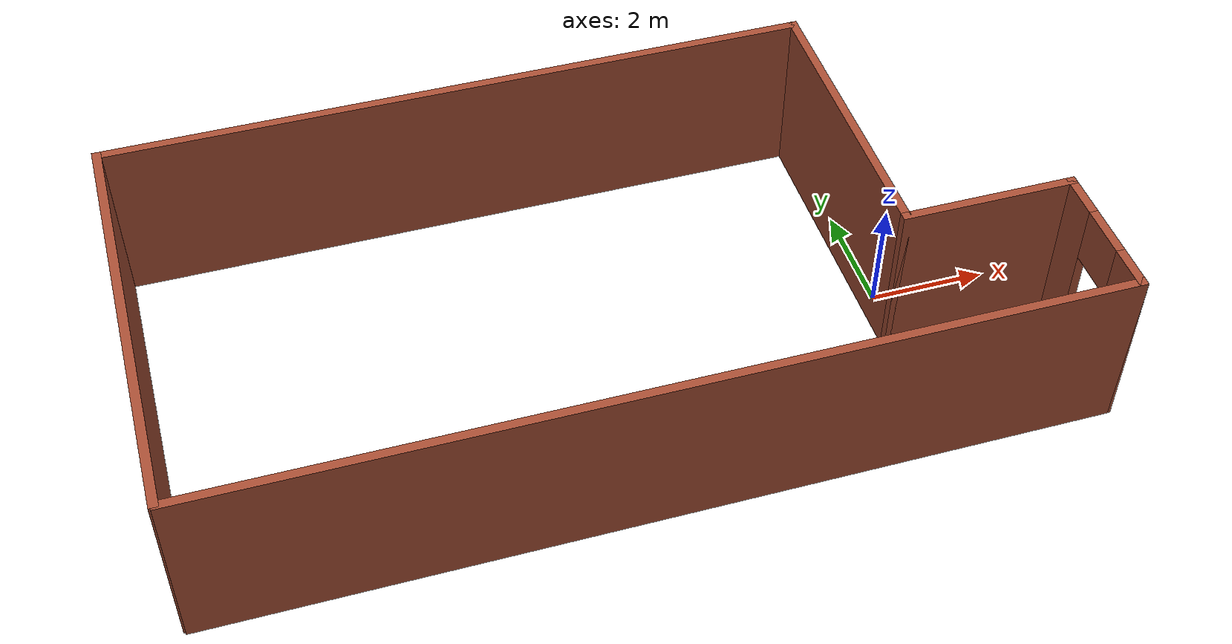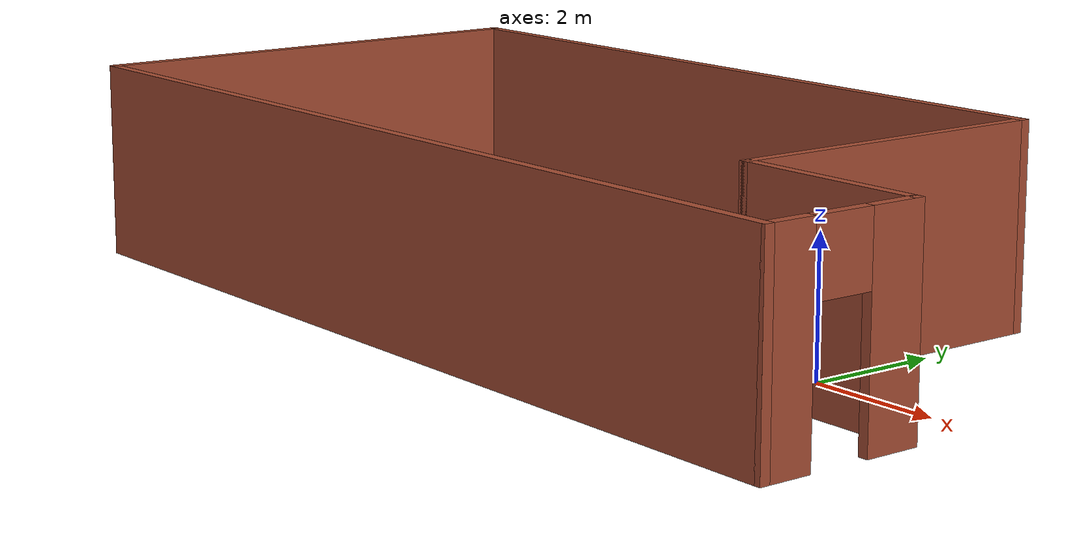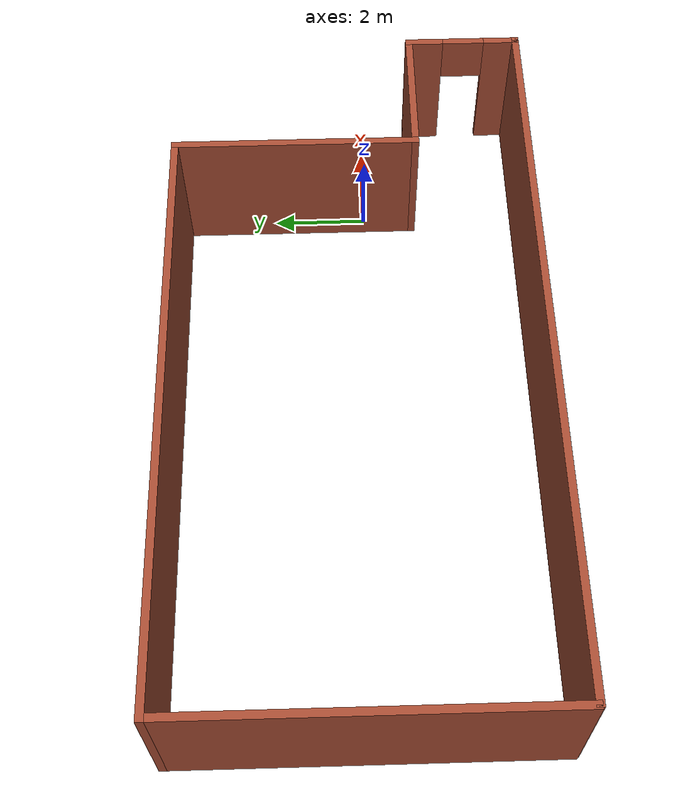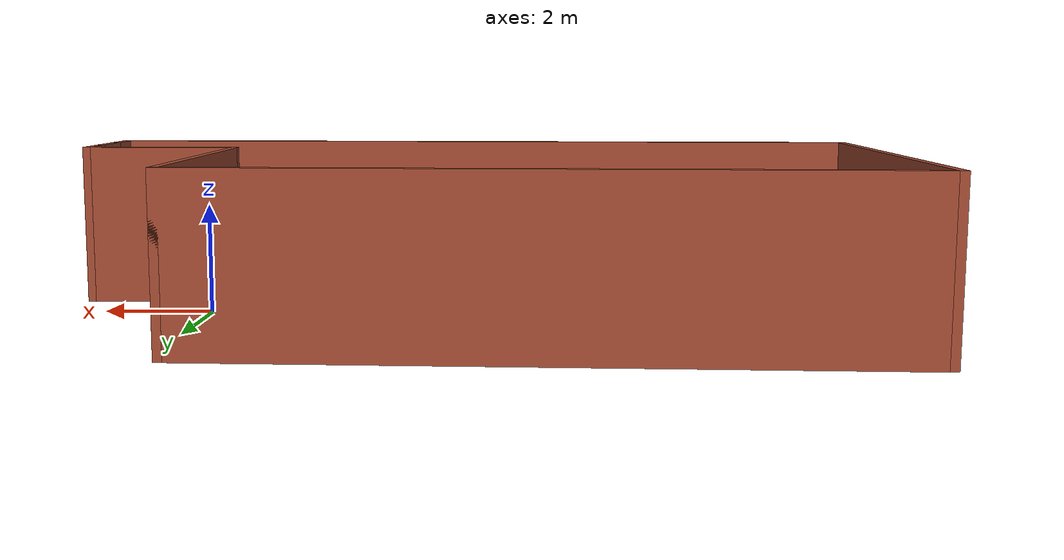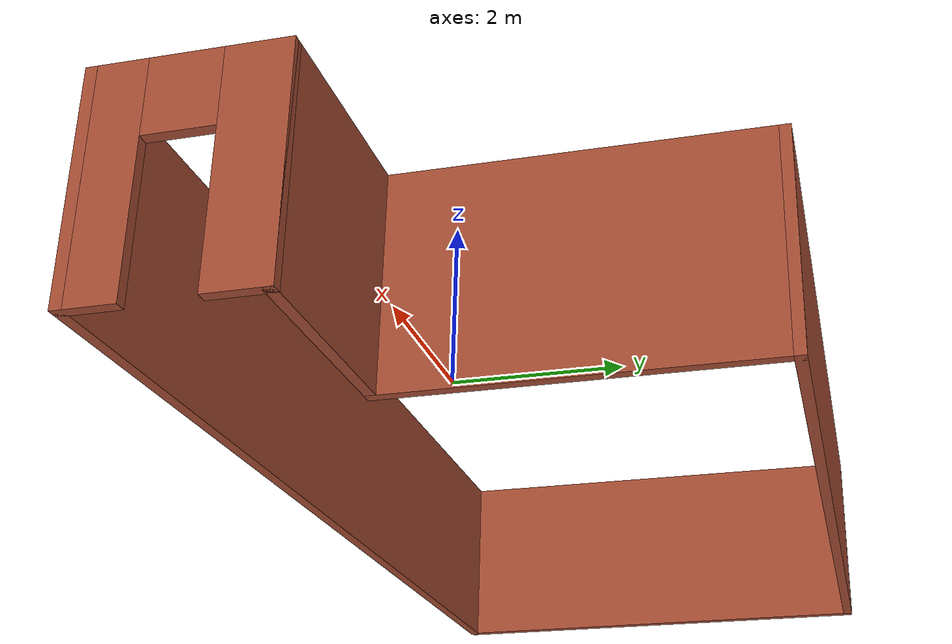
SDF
<?xml version='1.0'?>
<sdf version='1.6'>
  <model name='Level_1'>
    <pose frame=''>-4.80688 0.273767 0 0 -0 0</pose>
    <link name='Wall_0'>
      <collision name='Wall_0_Collision'>
        <geometry>
          <box>
            <size>12.182 0.15 3</size>
          </box>
        </geometry>
        <pose frame=''>0 0 1.5 0 -0 0</pose>
      </collision>
      <visual name='Wall_0_Visual'>
        <pose frame=''>0 0 1.5 0 -0 0</pose>
        <geometry>
          <box>
            <size>12.182 0.15 3</size>
          </box>
        </geometry>
        <material>
          <script>
            <uri>file://media/materials/scripts/gazebo.material</uri>
            <name>Gazebo/Bricks</name>
          </script>
          <ambient>0.921569 0.807843 0.615686 1</ambient>
        </material>
        <meta>
          <layer>0</layer>
        </meta>
      </visual>
      <pose frame=''>-1.42512 3.69223 0 0 -0 0</pose>
    </link>
    <link name='Wall_10'>
      <pose frame=''>7.44088 -2.51677 0 0 0 -1.5708</pose>
      <visual name='Wall_10_Visual_0'>
        <pose frame=''>-0.839128 0 1.5 0 -0 0</pose>
        <geometry>
          <box>
            <size>0.821744 0.15 3</size>
          </box>
        </geometry>
        <material>
          <script>
            <uri>file://media/materials/scripts/gazebo.material</uri>
            <name>Gazebo/Bricks</name>
          </script>
          <ambient>1 1 1 1</ambient>
        </material>
        <meta>
          <layer>0</layer>
        </meta>
      </visual>
      <collision name='Wall_10_Collision_0'>
        <geometry>
          <box>
            <size>0.821744 0.15 3</size>
          </box>
        </geometry>
        <pose frame=''>-0.839128 0 1.5 0 -0 0</pose>
      </collision>
      <visual name='Wall_10_Visual_1'>
        <pose frame=''>0.860872 0 1.5 0 -0 0</pose>
        <geometry>
          <box>
            <size>0.778256 0.15 3</size>
          </box>
        </geometry>
        <material>
          <script>
            <uri>file://media/materials/scripts/gazebo.material</uri>
            <name>Gazebo/Bricks</name>
          </script>
          <ambient>1 1 1 1</ambient>
        </material>
        <meta>
          <layer>0</layer>
        </meta>
      </visual>
      <collision name='Wall_10_Collision_1'>
        <geometry>
          <box>
            <size>0.778256 0.15 3</size>
          </box>
        </geometry>
        <pose frame=''>0.860872 0 1.5 0 -0 0</pose>
      </collision>
      <visual name='Wall_10_Visual_2'>
        <pose frame=''>0.021744 0 2.5 0 -0 0</pose>
        <geometry>
          <box>
            <size>0.9 0.15 1</size>
          </box>
        </geometry>
        <material>
          <script>
            <uri>file://media/materials/scripts/gazebo.material</uri>
            <name>Gazebo/Bricks</name>
          </script>
          <ambient>1 1 1 1</ambient>
        </material>
        <meta>
          <layer>0</layer>
        </meta>
      </visual>
      <collision name='Wall_10_Collision_2'>
        <geometry>
          <box>
            <size>0.9 0.15 1</size>
          </box>
        </geometry>
        <pose frame=''>0.021744 0 2.5 0 -0 0</pose>
      </collision>
    </link>
    <link name='Wall_2'>
      <collision name='Wall_2_Collision'>
        <geometry>
          <box>
            <size>15 0.15 3</size>
          </box>
        </geometry>
        <pose frame=''>0 0 1.5 0 -0 0</pose>
      </collision>
      <visual name='Wall_2_Visual'>
        <pose frame=''>0 0 1.5 0 -0 0</pose>
        <geometry>
          <box>
            <size>15 0.15 3</size>
          </box>
        </geometry>
        <material>
          <script>
            <uri>file://media/materials/scripts/gazebo.material</uri>
            <name>Gazebo/Bricks</name>
          </script>
          <ambient>0.921569 0.807843 0.615686 1</ambient>
        </material>
        <meta>
          <layer>0</layer>
        </meta>
      </visual>
      <pose frame=''>0.016122 -3.692 0 0 -0 3.1e-05</pose>
    </link>
    <link name='Wall_5'>
      <collision name='Wall_5_Collision'>
        <geometry>
          <box>
            <size>7.5 0.15 3</size>
          </box>
        </geometry>
        <pose frame=''>0 0 1.5 0 -0 0</pose>
      </collision>
      <visual name='Wall_5_Visual'>
        <pose frame=''>0 0 1.5 0 -0 0</pose>
        <geometry>
          <box>
            <size>7.5 0.15 3</size>
          </box>
        </geometry>
        <material>
          <script>
            <uri>file://media/materials/scripts/gazebo.material</uri>
            <name>Gazebo/Bricks</name>
          </script>
          <ambient>0.921569 0.807843 0.615686 1</ambient>
        </material>
        <meta>
          <layer>0</layer>
        </meta>
      </visual>
      <pose frame=''>-7.44112 0.017233 0 0 0 -1.5708</pose>
    </link>
    <link name='Wall_7'>
      <collision name='Wall_7_Collision'>
        <geometry>
          <box>
            <size>5.184 0.15 3</size>
          </box>
        </geometry>
        <pose frame=''>0 0 1.5 0 -0 0</pose>
      </collision>
      <visual name='Wall_7_Visual'>
        <pose frame=''>0 0 1.5 0 -0 0</pose>
        <geometry>
          <box>
            <size>5.184 0.15 3</size>
          </box>
        </geometry>
        <material>
          <script>
            <uri>file://media/materials/scripts/gazebo.material</uri>
            <name>Gazebo/Bricks</name>
          </script>
          <ambient>0.921569 0.807843 0.615686 1</ambient>
        </material>
        <meta>
          <layer>0</layer>
        </meta>
      </visual>
      <pose frame=''>4.59088 1.17523 0 0 -0 1.5708</pose>
    </link>
    <link name='Wall_9'>
      <collision name='Wall_9_Collision'>
        <geometry>
          <box>
            <size>3 0.15 3</size>
          </box>
        </geometry>
        <pose frame=''>0 0 1.5 0 -0 0</pose>
      </collision>
      <visual name='Wall_9_Visual'>
        <pose frame=''>0 0 1.5 0 -0 0</pose>
        <geometry>
          <box>
            <size>3 0.15 3</size>
          </box>
        </geometry>
        <material>
          <script>
            <uri>file://media/materials/scripts/gazebo.material</uri>
            <name>Gazebo/Bricks</name>
          </script>
          <ambient>0.921569 0.807843 0.615686 1</ambient>
        </material>
        <meta>
          <layer>0</layer>
        </meta>
      </visual>
      <pose frame=''>6.01588 -1.34177 0 0 -0 0</pose>
    </link>
    <static>1</static>
  </model>
</sdf>
